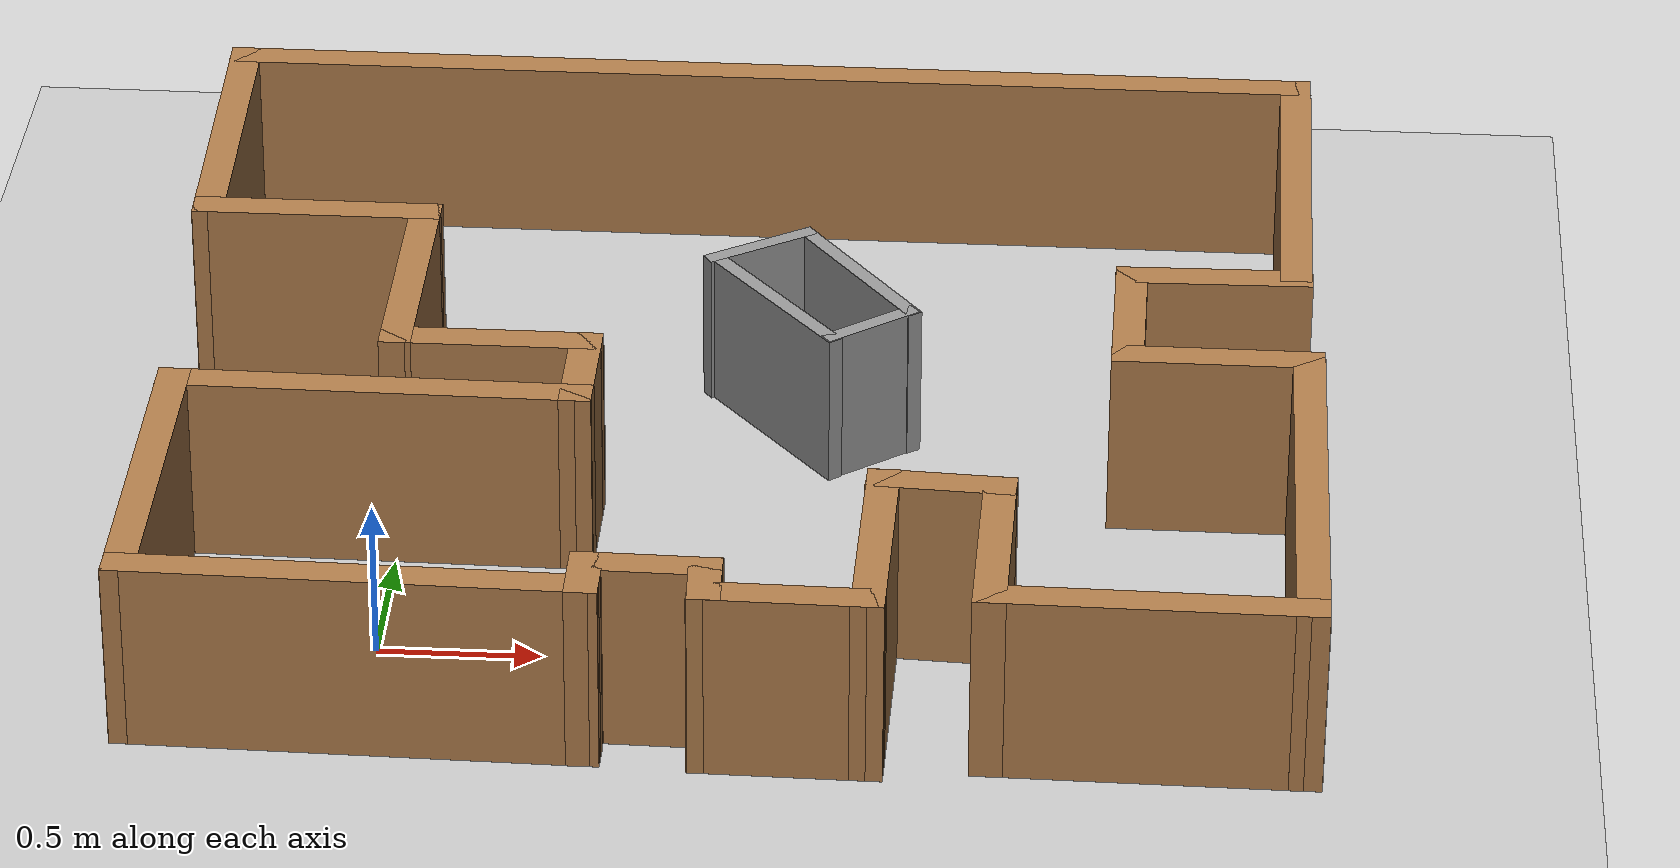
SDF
<sdf version="1.4">
 <world name="default">
  <light name="sun" type="directional">
   <pose>0 0 10 0 -0 0</pose>
   <diffuse>0.8 0.8 0.8 1</diffuse>
   <specular>0.2 0.2 0.2 1</specular>
   <attenuation>
    <range>1000</range>
    <constant>0.9</constant>
    <linear>0.01</linear>
    <quadratic>0.001</quadratic>
   </attenuation>
   <direction>-0.5 0.1 -0.9</direction>
  </light>
  <model name="ground_plane">
   <static>1</static>
   <link name="link">
    <collision name="collision">
     <geometry><plane><normal>0 0 1</normal><size>100 100</size></plane></geometry>
     <surface><friction><ode><mu>100</mu><mu2>50</mu2></ode></friction></surface>
    </collision>
    <visual name="visual">
     <cast_shadows>0</cast_shadows>
     <geometry><plane><normal>0 0 1</normal><size>100 100</size></plane></geometry>
     <material>
      <script><uri>file://media/materials/scripts/gazebo.material</uri><name>Gazebo/Grey</name></script>
     </material>
    </visual>
    <velocity_decay><linear>0</linear><angular>0</angular></velocity_decay>
   </link>
  </model>
  <physics type="ode">
   <max_step_size>0.001</max_step_size>
   <real_time_factor>1</real_time_factor>
   <real_time_update_rate>1000</real_time_update_rate>
   <gravity>0 0 -9.8</gravity>
  </physics>
  <scene><ambient>0.4 0.4 0.4 1</ambient><background>0.7 0.7 0.7 1</background><shadows>1</shadows></scene>
  <spherical_coordinates>
   <surface_model>EARTH_WGS84</surface_model>
   <latitude_deg>0</latitude_deg>
   <longitude_deg>0</longitude_deg>
   <elevation>0</elevation>
   <heading_deg>0</heading_deg>
  </spherical_coordinates>
  <model name="candy_kingdom">
   <pose>1.02162 1.09966 0 0 0 -0.109801</pose>
   <link name="Wall_10">
    <collision name="Wall_10_Collision">
     <geometry><box><size>1.33549 0.1 0.6</size></box></geometry>
     <pose>0 0 0.3 0 -0 0</pose>
    </collision>
    <visual name="Wall_10_Visual">
     <pose>0 0 0.3 0 -0 0</pose>
     <geometry><box><size>1.33549 0.1 0.6</size></box></geometry>
     <material>
      <script><uri>file://media/materials/scripts/gazebo.material</uri><name>Gazebo/Wood</name></script>
      <ambient>1 1 1 1</ambient>
     </material>
    </visual>
    <pose>-1.01562 -0.65399 0 0 0 -3.04104</pose>
    <velocity_decay><linear>0</linear><angular>0</angular></velocity_decay>
   </link>
   <link name="Wall_11">
    <collision name="Wall_11_Collision">
     <geometry><box><size>1.17868 0.1 0.6</size></box></geometry>
     <pose>0 0 0.3 0 -0 0</pose>
    </collision>
    <visual name="Wall_11_Visual">
     <pose>0 0 0.3 0 -0 0</pose>
     <geometry><box><size>1.17868 0.1 0.6</size></box></geometry>
     <material>
      <script><uri>file://media/materials/scripts/gazebo.material</uri><name>Gazebo/Wood</name></script>
      <ambient>1 1 1 1</ambient>
     </material>
    </visual>
    <pose>-1.57112 -1.25199 0 0 0 -1.46116</pose>
    <velocity_decay><linear>0</linear><angular>0</angular></velocity_decay>
   </link>
   <link name="Wall_12">
    <collision name="Wall_12_Collision">
     <geometry><box><size>1.45382 0.1 0.6</size></box></geometry>
     <pose>0 0 0.3 0 -0 0</pose>
    </collision>
    <visual name="Wall_12_Visual">
     <pose>0 0 0.3 0 -0 0</pose>
     <geometry><box><size>1.45382 0.1 0.6</size></box></geometry>
     <material>
      <script><uri>file://media/materials/scripts/gazebo.material</uri><name>Gazebo/Wood</name></script>
      <ambient>1 1 1 1</ambient>
     </material>
    </visual>
    <pose>-0.83812 -1.72549 0 0 -0 0.092466</pose>
    <velocity_decay><linear>0</linear><angular>0</angular></velocity_decay>
   </link>
   <link name="Wall_13">
    <collision name="Wall_13_Collision">
     <geometry><box><size>0.226614 0.1 0.6</size></box></geometry>
     <pose>0 0 0.3 0 -0 0</pose>
    </collision>
    <visual name="Wall_13_Visual">
     <pose>0 0 0.3 0 -0 0</pose>
     <geometry><box><size>0.226614 0.1 0.6</size></box></geometry>
     <material>
      <script><uri>file://media/materials/scripts/gazebo.material</uri><name>Gazebo/Wood</name></script>
      <ambient>1 1 1 1</ambient>
     </material>
    </visual>
    <pose>-0.17112 -1.60049 0 0 -0 1.68233</pose>
    <velocity_decay><linear>0</linear><angular>0</angular></velocity_decay>
   </link>
   <link name="Wall_14">
    <collision name="Wall_14_Collision">
     <geometry><box><size>0.450557 0.1 0.6</size></box></geometry>
     <pose>0 0 0.3 0 -0 0</pose>
    </collision>
    <visual name="Wall_14_Visual">
     <pose>0 0 0.3 0 -0 0</pose>
     <geometry><box><size>0.450557 0.1 0.6</size></box></geometry>
     <material>
      <script><uri>file://media/materials/scripts/gazebo.material</uri><name>Gazebo/Wood</name></script>
      <ambient>1 1 1 1</ambient>
     </material>
    </visual>
    <pose>-0.00362 -1.52149 0 0 -0 0.094276</pose>
    <velocity_decay><linear>0</linear><angular>0</angular></velocity_decay>
   </link>
   <link name="Wall_15">
    <collision name="Wall_15_Collision">
     <geometry><box><size>0.233507 0.1 0.6</size></box></geometry>
     <pose>0 0 0.3 0 -0 0</pose>
    </collision>
    <visual name="Wall_15_Visual">
     <pose>0 0 0.3 0 -0 0</pose>
     <geometry><box><size>0.233507 0.1 0.6</size></box></geometry>
     <material>
      <script><uri>file://media/materials/scripts/gazebo.material</uri><name>Gazebo/Wood</name></script>
      <ambient>1 1 1 1</ambient>
     </material>
    </visual>
    <pose>0.18088 -1.57099 0 0 0 -1.42043</pose>
    <velocity_decay><linear>0</linear><angular>0</angular></velocity_decay>
   </link>
   <link name="Wall_16">
    <collision name="Wall_16_Collision">
     <geometry><box><size>0.576227 0.1 0.6</size></box></geometry>
     <pose>0 0 0.3 0 -0 0</pose>
    </collision>
    <visual name="Wall_16_Visual">
     <pose>0 0 0.3 0 -0 0</pose>
     <geometry><box><size>0.576227 0.1 0.6</size></box></geometry>
     <material>
      <script><uri>file://media/materials/scripts/gazebo.material</uri><name>Gazebo/Wood</name></script>
      <ambient>1 1 1 1</ambient>
     </material>
    </visual>
    <pose>0.42788 -1.61399 0 0 -0 0.096743</pose>
    <velocity_decay><linear>0</linear><angular>0</angular></velocity_decay>
   </link>
   <link name="Wall_17">
    <collision name="Wall_17_Collision">
     <geometry><box><size>0.774238 0.1 0.6</size></box></geometry>
     <pose>0 0 0.3 0 -0 0</pose>
    </collision>
    <visual name="Wall_17_Visual">
     <pose>0 0 0.3 0 -0 0</pose>
     <geometry><box><size>0.774238 0.1 0.6</size></box></geometry>
     <material>
      <script><uri>file://media/materials/scripts/gazebo.material</uri><name>Gazebo/Wood</name></script>
      <ambient>1 1 1 1</ambient>
     </material>
    </visual>
    <pose>0.63188 -1.25549 0 0 -0 1.66884</pose>
    <velocity_decay><linear>0</linear><angular>0</angular></velocity_decay>
   </link>
   <link name="Wall_18">
    <collision name="Wall_18_Collision">
     <geometry><box><size>0.448518 0.1 0.6</size></box></geometry>
     <pose>0 0 0.3 0 -0 0</pose>
    </collision>
    <visual name="Wall_18_Visual">
     <pose>0 0 0.3 0 -0 0</pose>
     <geometry><box><size>0.448518 0.1 0.6</size></box></geometry>
     <material>
      <script><uri>file://media/materials/scripts/gazebo.material</uri><name>Gazebo/Wood</name></script>
      <ambient>1 1 1 1</ambient>
     </material>
    </visual>
    <pose>0.77288 -0.91049 0 0 -0 0.054544</pose>
    <velocity_decay><linear>0</linear><angular>0</angular></velocity_decay>
   </link>
   <link name="Wall_19">
    <collision name="Wall_19_Collision">
     <geometry><box><size>0.707372 0.1 0.6</size></box></geometry>
     <pose>0 0 0.3 0 -0 0</pose>
    </collision>
    <visual name="Wall_19_Visual">
     <pose>0 0 0.3 0 -0 0</pose>
     <geometry><box><size>0.707372 0.1 0.6</size></box></geometry>
     <material>
      <script><uri>file://media/materials/scripts/gazebo.material</uri><name>Gazebo/Wood</name></script>
      <ambient>1 1 1 1</ambient>
     </material>
    </visual>
    <pose>0.97638 -1.20299 0 0 0 -1.47342</pose>
    <velocity_decay><linear>0</linear><angular>0</angular></velocity_decay>
   </link>
   <link name="Wall_20">
    <collision name="Wall_20_Collision">
     <geometry><box><size>1.03205 0.1 0.6</size></box></geometry>
     <pose>0 0 0.3 0 -0 0</pose>
    </collision>
    <visual name="Wall_20_Visual">
     <pose>0 0 0.3 0 -0 0</pose>
     <geometry><box><size>1.03205 0.1 0.6</size></box></geometry>
     <material>
      <script><uri>file://media/materials/scripts/gazebo.material</uri><name>Gazebo/Wood</name></script>
      <ambient>1 1 1 1</ambient>
     </material>
    </visual>
    <pose>1.46988 -1.45899 0 0 -0 0.098815</pose>
    <velocity_decay><linear>0</linear><angular>0</angular></velocity_decay>
   </link>
   <link name="Wall_21">
    <collision name="Wall_21_Collision">
     <geometry><box><size>1.52937 0.1 0.6</size></box></geometry>
     <pose>0 0 0.3 0 -0 0</pose>
    </collision>
    <visual name="Wall_21_Visual">
     <pose>0 0 0.3 0 -0 0</pose>
     <geometry><box><size>1.52937 0.1 0.6</size></box></geometry>
     <material>
      <script><uri>file://media/materials/scripts/gazebo.material</uri><name>Gazebo/Wood</name></script>
      <ambient>1 1 1 1</ambient>
     </material>
    </visual>
    <pose>1.85138 -0.70299 0 0 -0 1.68647</pose>
    <velocity_decay><linear>0</linear><angular>0</angular></velocity_decay>
   </link>
   <link name="Wall_22">
    <collision name="Wall_22_Collision">
     <geometry><box><size>0.655654 0.1 0.6</size></box></geometry>
     <pose>0 0 0.3 0 -0 0</pose>
    </collision>
    <visual name="Wall_22_Visual">
     <pose>0 0 0.3 0 -0 0</pose>
     <geometry><box><size>0.655654 0.1 0.6</size></box></geometry>
     <material>
      <script><uri>file://media/materials/scripts/gazebo.material</uri><name>Gazebo/Wood</name></script>
      <ambient>1 1 1 1</ambient>
     </material>
    </visual>
    <pose>1.49288 -0.02299 0 0 0 -3.03332</pose>
    <velocity_decay><linear>0</linear><angular>0</angular></velocity_decay>
   </link>
   <link name="Wall_23">
    <collision name="Wall_23_Collision">
     <geometry><box><size>0.595265 0.1 0.6</size></box></geometry>
     <pose>0 0 0.3 0 -0 0</pose>
    </collision>
    <visual name="Wall_23_Visual">
     <pose>0 0 0.3 0 -0 0</pose>
     <geometry><box><size>0.595265 0.1 0.6</size></box></geometry>
     <material>
      <script><uri>file://media/materials/scripts/gazebo.material</uri><name>Gazebo/Wood</name></script>
      <ambient>1 1 1 1</ambient>
     </material>
    </visual>
    <pose>1.19088 0.19351 0 0 -0 1.67588</pose>
    <velocity_decay><linear>0</linear><angular>0</angular></velocity_decay>
   </link>
   <link name="Wall_24">
    <collision name="Wall_24_Collision">
     <geometry><box><size>0.615902 0.1 0.6</size></box></geometry>
     <pose>0 0 0.3 0 -0 0</pose>
    </collision>
    <visual name="Wall_24_Visual">
     <pose>0 0 0.3 0 -0 0</pose>
     <geometry><box><size>0.615902 0.1 0.6</size></box></geometry>
     <material>
      <script><uri>file://media/materials/scripts/gazebo.material</uri><name>Gazebo/Wood</name></script>
      <ambient>1 1 1 1</ambient>
     </material>
    </visual>
    <pose>1.42088 0.47351 0 0 -0 0.13012</pose>
    <velocity_decay><linear>0</linear><angular>0</angular></velocity_decay>
   </link>
   <link name="Wall_3">
    <collision name="Wall_3_Collision">
     <geometry><box><size>1.3566 0.1 0.6</size></box></geometry>
     <pose>0 0 0.3 0 -0 0</pose>
    </collision>
    <visual name="Wall_3_Visual">
     <pose>0 0 0.3 0 -0 0</pose>
     <geometry><box><size>1.3566 0.1 0.6</size></box></geometry>
     <material>
      <script><uri>file://media/materials/scripts/gazebo.material</uri><name>Gazebo/Wood</name></script>
      <ambient>1 1 1 1</ambient>
     </material>
    </visual>
    <pose>1.60188 1.16351 0 0 -0 1.68084</pose>
    <velocity_decay><linear>0</linear><angular>0</angular></velocity_decay>
   </link>
   <link name="Wall_32">
    <collision name="Wall_32_Collision">
     <geometry><box><size>0.645103 0.05 0.5</size></box></geometry>
     <pose>0 0 0.25 0 -0 0</pose>
    </collision>
    <visual name="Wall_32_Visual">
     <pose>0 0 0.25 0 -0 0</pose>
     <geometry><box><size>0.645103 0.05 0.5</size></box></geometry>
     <material>
      <script><uri>file://media/materials/scripts/gazebo.material</uri><name>Gazebo/Grey</name></script>
      <ambient>1 1 1 1</ambient>
     </material>
    </visual>
    <pose>0.065906 0.26336 0 0 0 -0.783853</pose>
    <velocity_decay><linear>0</linear><angular>0</angular></velocity_decay>
   </link>
   <link name="Wall_33">
    <collision name="Wall_33_Collision">
     <geometry><box><size>0.342166 0.05 0.5</size></box></geometry>
     <pose>0 0 0.25 0 -0 0</pose>
    </collision>
    <visual name="Wall_33_Visual">
     <pose>0 0 0.25 0 -0 0</pose>
     <geometry><box><size>0.342166 0.05 0.5</size></box></geometry>
     <material>
      <script><uri>file://media/materials/scripts/gazebo.material</uri><name>Gazebo/Grey</name></script>
      <ambient>1 1 1 1</ambient>
     </material>
    </visual>
    <pose>0.381694 0.16136 0 0 -0 0.768155</pose>
    <velocity_decay><linear>0</linear><angular>0</angular></velocity_decay>
   </link>
   <link name="Wall_34">
    <collision name="Wall_34_Collision">
     <geometry><box><size>0.654946 0.05 0.5</size></box></geometry>
     <pose>0 0 0.25 0 -0 0</pose>
    </collision>
    <visual name="Wall_34_Visual">
     <pose>0 0 0.25 0 -0 0</pose>
     <geometry><box><size>0.654946 0.05 0.5</size></box></geometry>
     <material>
      <script><uri>file://media/materials/scripts/gazebo.material</uri><name>Gazebo/Grey</name></script>
      <ambient>1 1 1 1</ambient>
     </material>
    </visual>
    <pose>0.289605 0.486435 0 0 -0 2.30977</pose>
    <velocity_decay><linear>0</linear><angular>0</angular></velocity_decay>
   </link>
   <link name="Wall_35">
    <collision name="Wall_35_Collision">
     <geometry><box><size>0.390788 0.05 0.5</size></box></geometry>
     <pose>0 0 0.25 0 -0 0</pose>
    </collision>
    <visual name="Wall_35_Visual">
     <pose>0 0 0.25 0 -0 0</pose>
     <geometry><box><size>0.390788 0.05 0.5</size></box></geometry>
     <material>
      <script><uri>file://media/materials/scripts/gazebo.material</uri><name>Gazebo/Grey</name></script>
      <ambient>1 1 1 1</ambient>
     </material>
    </visual>
    <pose>-0.04562 0.60151 0 0 0 -2.45174</pose>
    <velocity_decay><linear>0</linear><angular>0</angular></velocity_decay>
   </link>
   <link name="Wall_4">
    <collision name="Wall_4_Collision">
     <geometry><box><size>3.58765 0.1 0.6</size></box></geometry>
     <pose>0 0 0.3 0 -0 0</pose>
    </collision>
    <visual name="Wall_4_Visual">
     <pose>0 0 0.3 0 -0 0</pose>
     <geometry><box><size>3.58765 0.1 0.6</size></box></geometry>
     <material>
      <script><uri>file://media/materials/scripts/gazebo.material</uri><name>Gazebo/Wood</name></script>
      <ambient>1 1 1 1</ambient>
     </material>
    </visual>
    <pose>-0.20012 1.59401 0 0 0 -3.03011</pose>
    <velocity_decay><linear>0</linear><angular>0</angular></velocity_decay>
   </link>
   <link name="Wall_5">
    <collision name="Wall_5_Collision">
     <geometry><box><size>1.14119 0.1 0.6</size></box></geometry>
     <pose>0 0 0.3 0 -0 0</pose>
    </collision>
    <visual name="Wall_5_Visual">
     <pose>0 0 0.3 0 -0 0</pose>
     <geometry><box><size>1.14119 0.1 0.6</size></box></geometry>
     <material>
      <script><uri>file://media/materials/scripts/gazebo.material</uri><name>Gazebo/Wood</name></script>
      <ambient>1 1 1 1</ambient>
     </material>
    </visual>
    <pose>-1.86412 0.88401 0 0 0 -1.43786</pose>
    <velocity_decay><linear>0</linear><angular>0</angular></velocity_decay>
   </link>
   <link name="Wall_6">
    <collision name="Wall_6_Collision">
     <geometry><box><size>0.795353 0.1 0.6</size></box></geometry>
     <pose>0 0 0.3 0 -0 0</pose>
    </collision>
    <visual name="Wall_6_Visual">
     <pose>0 0 0.3 0 -0 0</pose>
     <geometry><box><size>0.795353 0.1 0.6</size></box></geometry>
     <material>
      <script><uri>file://media/materials/scripts/gazebo.material</uri><name>Gazebo/Wood</name></script>
      <ambient>1 1 1 1</ambient>
     </material>
    </visual>
    <pose>-1.44962 0.40751 0 0 -0 0.113833</pose>
    <velocity_decay><linear>0</linear><angular>0</angular></velocity_decay>
   </link>
   <link name="Wall_7">
    <collision name="Wall_7_Collision">
     <geometry><box><size>0.893251 0.1 0.6</size></box></geometry>
     <pose>0 0 0.3 0 -0 0</pose>
    </collision>
    <visual name="Wall_7_Visual">
     <pose>0 0 0.3 0 -0 0</pose>
     <geometry><box><size>0.893251 0.1 0.6</size></box></geometry>
     <material>
      <script><uri>file://media/materials/scripts/gazebo.material</uri><name>Gazebo/Wood</name></script>
      <ambient>1 1 1 1</ambient>
     </material>
    </visual>
    <pose>-1.06162 0.05251 0 0 0 -1.46348</pose>
    <velocity_decay><linear>0</linear><angular>0</angular></velocity_decay>
   </link>
   <link name="Wall_8">
    <collision name="Wall_8_Collision">
     <geometry><box><size>0.689195 0.1 0.6</size></box></geometry>
     <pose>0 0 0.3 0 -0 0</pose>
    </collision>
    <visual name="Wall_8_Visual">
     <pose>0 0 0.3 0 -0 0</pose>
     <geometry><box><size>0.689195 0.1 0.6</size></box></geometry>
     <material>
      <script><uri>file://media/materials/scripts/gazebo.material</uri><name>Gazebo/Wood</name></script>
      <ambient>1 1 1 1</ambient>
     </material>
    </visual>
    <pose>-0.72662 -0.30899 0 0 -0 0.112345</pose>
    <velocity_decay><linear>0</linear><angular>0</angular></velocity_decay>
   </link>
   <link name="Wall_9">
    <collision name="Wall_9_Collision">
     <geometry><box><size>0.417718 0.1 0.6</size></box></geometry>
     <pose>0 0 0.3 0 -0 0</pose>
    </collision>
    <visual name="Wall_9_Visual">
     <pose>0 0 0.3 0 -0 0</pose>
     <geometry><box><size>0.417718 0.1 0.6</size></box></geometry>
     <material>
      <script><uri>file://media/materials/scripts/gazebo.material</uri><name>Gazebo/Wood</name></script>
      <ambient>1 1 1 1</ambient>
     </material>
    </visual>
    <pose>-0.41762 -0.43399 0 0 0 -1.46674</pose>
    <velocity_decay><linear>0</linear><angular>0</angular></velocity_decay>
   </link>
   <static>1</static>
  </model>
 </world>
</sdf>
